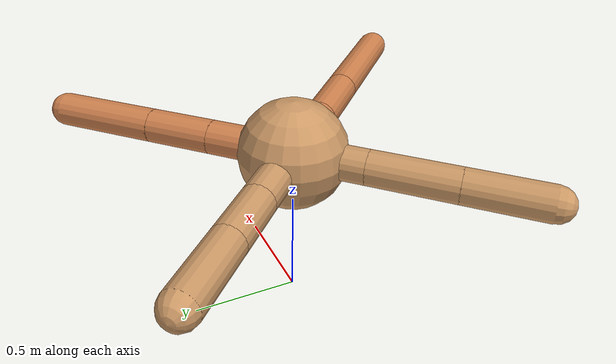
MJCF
<mujoco model="ant">
  <compiler angle="degree" coordinate="local" inertiafromgeom="true" />
  <option integrator="RK4" timestep="0.01" />
  <custom>
    <numeric data="0.0 0.0 0.55 1.0 0.0 0.0 0.0 0.0 1.0 0.0 -1.0 0.0 -1.0 0.0 1.0" name="init_qpos" />
  </custom>
  <default>
    <joint armature="1" damping="1" limited="true" />
    <geom conaffinity="0" condim="3" density="5.0" friction="1.5 0.1 0.1" margin="0.01" rgba="0.8 0.6 0.4 1" />
  </default>
  <worldbody>
    <body name="torso" pos="0 0 0.75">
      <geom name="torso_geom" pos="0 0 0" size="0.25" type="sphere" />

      <body name="front_left_leg" pos="0 0 0">
        <geom fromto="0.0 0.0 0.0 0.28211136400596953 0.28211136400596953 0.0" name="aux_1_geom" size="0.08" type="capsule" rgba=".8 .5 .3 1" />
        <body name="aux_1" pos="0.28211136400596953 0.28211136400596953 0.0">
          <joint axis="0 0 1" name="hip_1" pos="0.0 0.0 0.0" range="-40 40" type="hinge" />
          <geom fromto="0.0 0.0 0.0 0.22030902840406574 0.22030902840406574 0.0" name="left_leg_geom" size="0.08" type="capsule" rgba=".8 .5 .3 1" />
          <body pos="0.22030902840406574 0.22030902840406574 0.0" name="front_left_foot">
            <joint axis="-1 1 0" name="ankle_1" pos="0.0 0.0 0.0" range="30 100" type="hinge" />
            <geom fromto="0.0 0.0 0.0 0.34286795986605356 0.34286795986605356 0.0" name="left_ankle_geom" size="0.08" type="capsule" rgba=".8 .5 .3 1" />
          </body>
        </body>
      </body>
      <body name="front_right_leg" pos="0 0 0">
        <geom fromto="0.0 0.0 0.0 -0.28223602997058767 0.28223602997058767 0.0" name="aux_2_geom" size="0.08" type="capsule" />
        <body name="aux_2" pos="-0.28223602997058767 0.28223602997058767 0.0">
          <joint axis="0 0 1" name="hip_2" pos="0.0 0.0 0.0" range="-40 40" type="hinge" />
          <geom fromto="0.0 0.0 0.0 -0.19394271546133468 0.19394271546133468 0.0" name="right_leg_geom" size="0.08" type="capsule" />
          <body pos="-0.19394271546133468 0.19394271546133468 0.0" name="front_right_foot">
            <joint axis="1 1 0" name="ankle_2" pos="0.0 0.0 0.0" range="-100 -30" type="hinge" />
            <geom fromto="0.0 0.0 0.0 -0.25127285134114635 0.25127285134114635 0.0" name="right_ankle_geom" size="0.08" type="capsule" />
          </body>
        </body>
      </body>
      <body name="left_back_leg" pos="0 0 0">
        <geom fromto="0.0 0.0 0.0 -0.23951333733650665 -0.23951333733650665 0.0" name="aux_3_geom" size="0.08" type="capsule" />
        <body name="aux_3" pos="-0.23951333733650665 -0.23951333733650665 0.0">
          <joint axis="0 0 1" name="hip_3" pos="0.0 0.0 0.0" range="-40 40" type="hinge" />
          <geom fromto="0.0 0.0 0.0 -0.2780680995264183 -0.2780680995264183 0.0" name="back_leg_geom" size="0.08" type="capsule" />
          <body pos="-0.2780680995264183 -0.2780680995264183 0.0" name="left_back_foot">
            <joint axis="-1 1 0" name="ankle_3" pos="0.0 0.0 0.0" range="-100 -30" type="hinge" />
            <geom fromto="0.0 0.0 0.0 -0.2549446903159078 -0.2549446903159078 0.0" name="third_ankle_geom" size="0.08" type="capsule" />
          </body>
        </body>
      </body>
      <body name="right_back_leg" pos="0 0 0">
        <geom fromto="0.0 0.0 0.0 0.262830566159573 -0.262830566159573 0.0" name="aux_4_geom" size="0.08" type="capsule" rgba=".8 .5 .3 1" />
        <body name="aux_4" pos="0.262830566159573 -0.262830566159573 0.0">
          <joint axis="0 0 1" name="hip_4" pos="0.0 0.0 0.0" range="-40 40" type="hinge" />
          <geom fromto="0.0 0.0 0.0 0.24929561743951992 -0.24929561743951992 0.0" name="rightback_leg_geom" size="0.08" type="capsule" rgba=".8 .5 .3 1" />
          <body pos="0.24929561743951992 -0.24929561743951992 0.0" name="right_back_foot">
            <joint axis="1 1 0" name="ankle_4" pos="0.0 0.0 0.0" range="30 100" type="hinge" />
            <geom fromto="0.0 0.0 0.0 0.46837316281217806 -0.46837316281217806 0.0" name="fourth_ankle_geom" size="0.08" type="capsule" rgba=".8 .5 .3 1" />
          </body>
        </body>
      </body>
    </body>
  </worldbody>
  <actuator>
    <motor ctrllimited="true" ctrlrange="-1.0 1.0" joint="hip_4" gear="150" />
    <motor ctrllimited="true" ctrlrange="-1.0 1.0" joint="ankle_4" gear="150" />
    <motor ctrllimited="true" ctrlrange="-1.0 1.0" joint="hip_1" gear="150" />
    <motor ctrllimited="true" ctrlrange="-1.0 1.0" joint="ankle_1" gear="150" />
    <motor ctrllimited="true" ctrlrange="-1.0 1.0" joint="hip_2" gear="150" />
    <motor ctrllimited="true" ctrlrange="-1.0 1.0" joint="ankle_2" gear="150" />
    <motor ctrllimited="true" ctrlrange="-1.0 1.0" joint="hip_3" gear="150" />
    <motor ctrllimited="true" ctrlrange="-1.0 1.0" joint="ankle_3" gear="150" />
  </actuator>
</mujoco>
